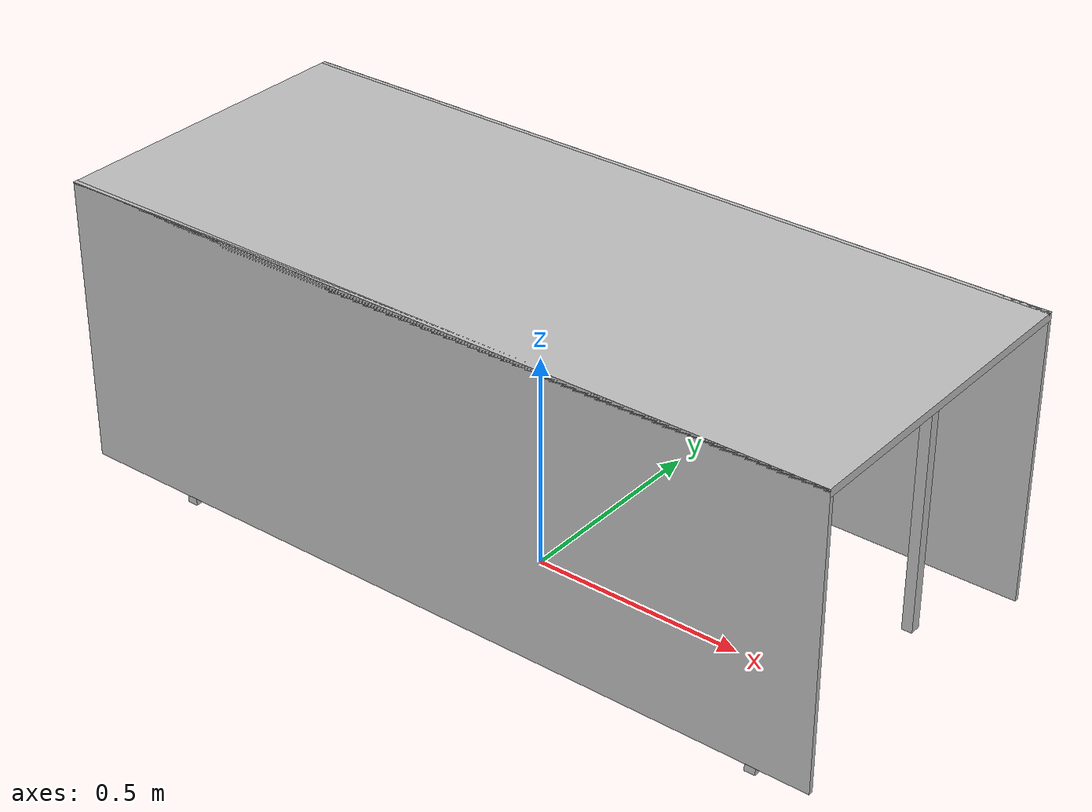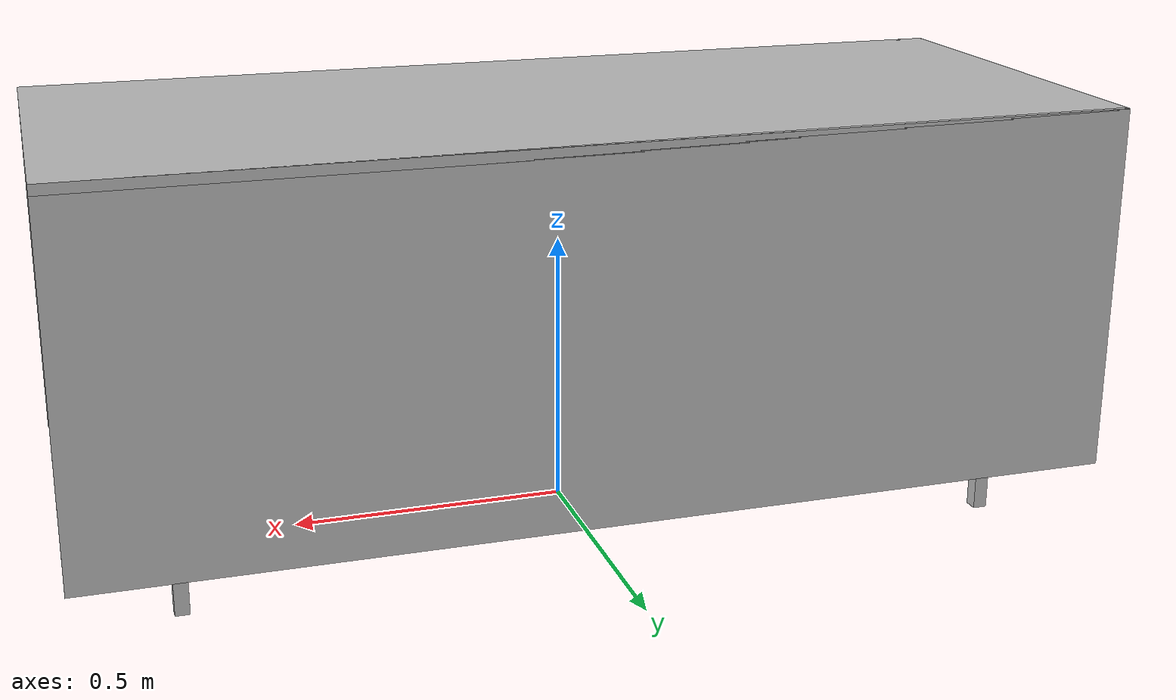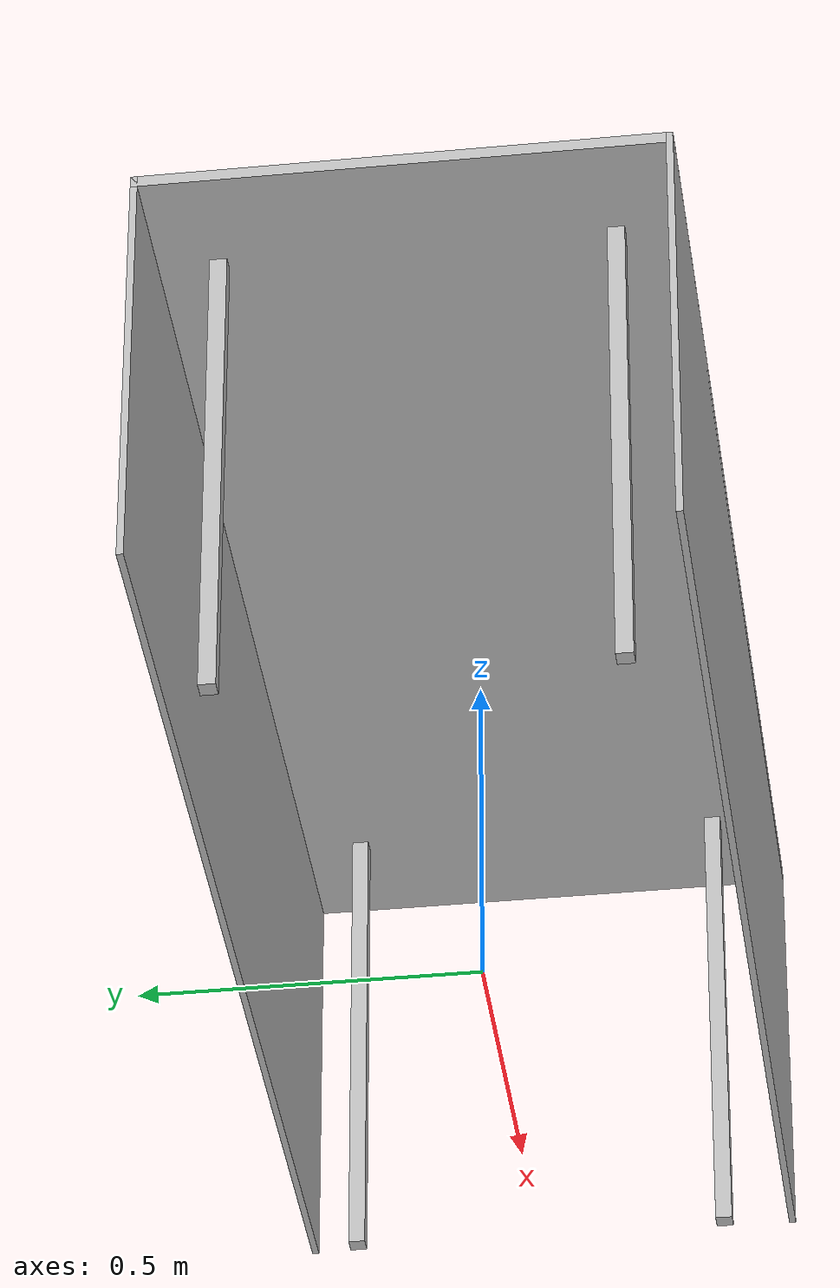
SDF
<?xml version="1.0"?>
<sdf version="1.6">
  <model name="rgo2018/table_dinner2">
    <link name="1_link">
      <collision name="1_col">
        <geometry>
          <box>
            <size>1.83 0.76 0.018</size>
          </box>
        </geometry>
      </collision>
      <visual name="1_vis">
        <geometry>
          <box>
            <size>1.83 0.76 0.018</size>
          </box>
        </geometry>
        <material>
          <ambient>0.75 0.75 0.75 1</ambient>
        </material>
      </visual>
      <pose>0 0 0.751 0 0 0</pose>
    </link>
    <link name="2_link">
      <collision name="2_col">
        <geometry>
          <box>
            <size>1.83 0.01 0.66</size>
          </box>
        </geometry>
      </collision>
      <visual name="2_vis">
        <geometry>
          <box>
            <size>1.83 0.01 0.66</size>
          </box>
        </geometry>
        <material>
          <ambient>0.75 0.75 0.75 1</ambient>
        </material>
      </visual>
      <pose>0 0.375 0.43 0 0 0</pose>
    </link>
    <link name="3_link">
      <collision name="3_col">
        <geometry>
          <box>
            <size>1.83 0.01 0.66</size>
          </box>
        </geometry>
      </collision>
      <visual name="3_vis">
        <geometry>
          <box>
            <size>1.83 0.01 0.66</size>
          </box>
        </geometry>
        <material>
          <ambient>0.75 0.75 0.75 1</ambient>
        </material>
      </visual>
      <pose>0 -0.375 0.43 0 0 0</pose>
    </link>
    <link name="4_link">
      <collision name="4_col">
        <geometry>
          <box>
            <size>0.025 0.025 0.742</size>
          </box>
        </geometry>
      </collision>
      <visual name="4_vis">
        <geometry>
          <box>
            <size>0.025 0.025 0.742</size>
          </box>
        </geometry>
        <material>
          <ambient>0.75 0.75 0.75 1</ambient>
        </material>
      </visual>
      <pose>-0.7325 -0.2825 0.371 0 0 0</pose>
    </link>
    <link name="5_link">
      <collision name="5_col">
        <geometry>
          <box>
            <size>0.025 0.025 0.742</size>
          </box>
        </geometry>
      </collision>
      <visual name="5_vis">
        <geometry>
          <box>
            <size>0.025 0.025 0.742</size>
          </box>
        </geometry>
        <material>
          <ambient>0.75 0.75 0.75 1</ambient>
        </material>
      </visual>
      <pose>0.7325 -0.2825 0.371 0 0 0</pose>
    </link>
    <link name="6_link">
      <collision name="6_col">
        <geometry>
          <box>
            <size>0.025 0.025 0.742</size>
          </box>
        </geometry>
      </collision>
      <visual name="6_vis">
        <geometry>
          <box>
            <size>0.025 0.025 0.742</size>
          </box>
        </geometry>
        <material>
          <ambient>0.75 0.75 0.75 1</ambient>
        </material>
      </visual>
      <pose>-0.7325 0.2825 0.371 0 0 0</pose>
    </link>
    <link name="7_link">
      <collision name="7_col">
        <geometry>
          <box>
            <size>0.025 0.025 0.742</size>
          </box>
        </geometry>
      </collision>
      <visual name="7_vis">
        <geometry>
          <box>
            <size>0.025 0.025 0.742</size>
          </box>
        </geometry>
        <material>
          <ambient>0.75 0.75 0.75 1</ambient>
        </material>
      </visual>
      <pose>0.7325 0.2825 0.371 0 0 0</pose>
    </link>
    <link name="on_top_of">
      <virtual_volume name="on_top_of_vv">
        <geometry>
          <box>
            <size>1.77 0.7 0.25</size>
          </box>
        </geometry>
        <pose>0.0 0.0 0.905 0 0 0</pose>
      </virtual_volume>
    </link>
    <link name="in_front_of">
      <virtual_volume name="in_front_of_vv">
        <geometry>
          <box>
            <size>1.2 0.7 0.01</size>
          </box>
        </geometry>
        <pose>0.0 0.75 0.005 0 0 0</pose>
      </virtual_volume>
    </link>
    <static>true</static>
  </model>
</sdf>
